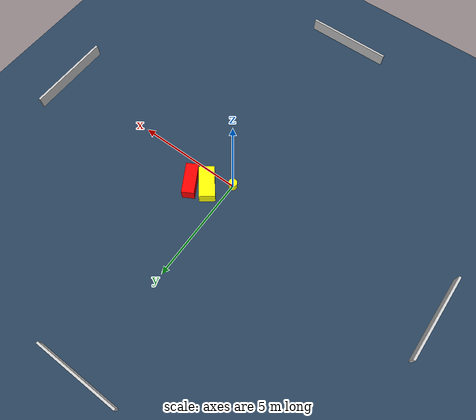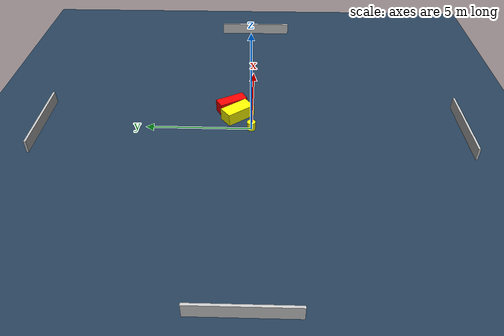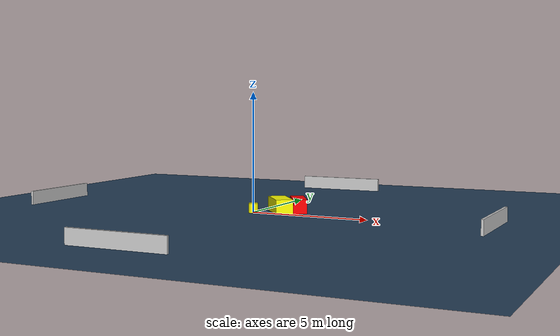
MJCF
<?xml version="1.0" ?>
<mujoco model="generated_environment">
  <option timestep="0.01" integrator="RK4" cone="elliptic"/>
  <default>
    <geom density="1"/>
  </default>
  <asset>
    <texture builtin="gradient" height="3072" name="skybox" rgb1="0.3 0.5 0.7" rgb2="0 0 0" type="skybox" width="512"/>
    <texture builtin="checker" height="300" name="groundplane" rgb1="0.2 0.3 0.4" rgb2="0.1 0.2 0.3" type="2d" width="300"/>
    <material name="groundplane" reflectance="0.2" texrepeat="5 5" texture="groundplane"/>
  </asset>
  <worldbody>
    <light dir="0 0 -1" directional="true" pos="0 0 1.5"/>
    <geom condim="3" friction="0.5 0.005 0.001" material="groundplane" name="floor" pos="0 0 0" size="0 0 0.05" type="plane"/>
    <body name="walls">
      <geom name="wall_1" condim="4" pos="-10.0 0.0 0.3" rgba="0.800000011920929 0.800000011920929 0.800000011920929 1.0" size="0.05 2.0 0.3" type="box"/>
      <geom name="wall_2" condim="4" pos="10.0 0.0 0.3" rgba="0.800000011920929 0.800000011920929 0.800000011920929 1.0" size="0.05 2.0 0.3" type="box"/>
      <geom name="wall_3" condim="4" pos="0.0 -10.0 0.3" rgba="0.800000011920929 0.800000011920929 0.800000011920929 1.0" size="2.0 0.05 0.3" type="box"/>
      <geom name="wall_4" condim="4" pos="0.0 10.0 0.3" rgba="0.800000011920929 0.800000011920929 0.800000011920929 1.0" size="2.0 0.05 0.3" type="box"/>
    </body>
    <body name="robot">
      <joint name="joint_x" type="slide" pos="0 0 0" axis="1 0 0"/>
      <joint name="joint_y" type="slide" pos="0 0 0" axis="0 1 0"/>
      <geom name="robot" type="cylinder" pos="0.0 0.0 0.2" size="0.2 0.2 0.0" mass="5.0" friction="1.0 0.005 0.0001" condim="4" rgba="1.0 1.0 0.0 1.0"/>
    </body>
    <body name="obstacle_1_movable">
      <geom name="obstacle_1_movable" condim="4" pos="0.9261609214317166 0.6959663673749776 0.3" euler="0 0 128.21958290292363" friction="0.0 0.005 0.001" rgba="1.0 1.0 0.0 1.0" size="0.7330114383766799 0.36028806379387246 0.3" type="box" mass="0.1"/>
      <joint type="free"/>
    </body>
    <body name="obstacle_2_static">
      <geom name="obstacle_2_static" condim="4" pos="1.6169467974251261 1.0095479352109396 0.3" euler="0 0 119.41935999614533" friction="0.0 0.005 0.001" rgba="1.0 0.0 0.0 1.0" size="0.7194523997476794 0.2862115797662379 0.3" type="box"/>
    </body>
  </worldbody>
  <actuator>
    <motor name="actuator_x" joint="joint_x" gear="1" ctrlrange="-1 1"/>
    <motor name="actuator_y" joint="joint_y" gear="1" ctrlrange="-1 1"/>
  </actuator>
</mujoco>
